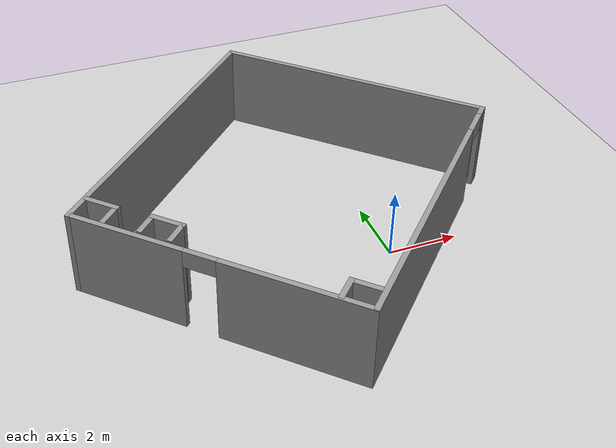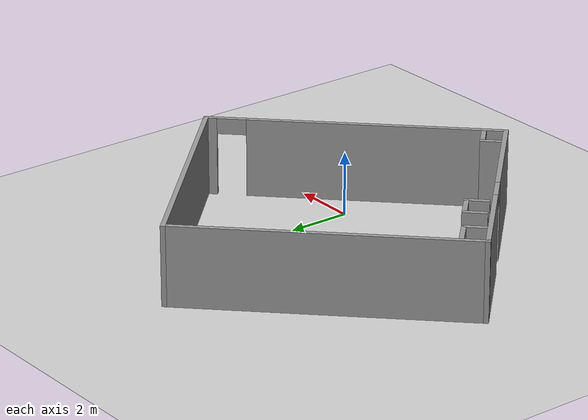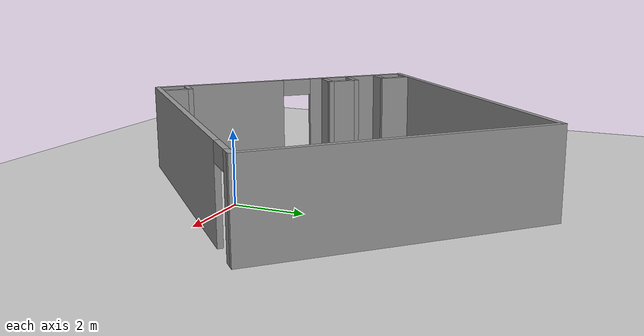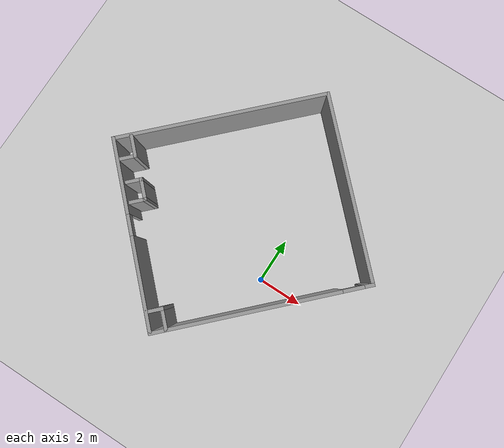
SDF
<sdf version="1.7">
 <world name="default">
  <light name="sun" type="directional">
   <pose>0 0 10 0 -0 0</pose>
   <diffuse>0.8 0.8 0.8 1</diffuse>
   <specular>0.2 0.2 0.2 1</specular>
   <attenuation>
    <range>1000</range>
    <constant>0.9</constant>
    <linear>0.01</linear>
    <quadratic>0.001</quadratic>
   </attenuation>
   <direction>-0.5 0.1 -0.9</direction>
   <spot><inner_angle>0</inner_angle><outer_angle>0</outer_angle><falloff>0</falloff></spot>
  </light>
  <model name="ground_plane">
   <static>1</static>
   <link name="link">
    <collision name="collision">
     <geometry><plane><normal>0 0 1</normal><size>100 100</size></plane></geometry>
     <surface>
      <contact><collide_bitmask>65535</collide_bitmask></contact>
      <friction><ode><mu>100</mu><mu2>50</mu2></ode></friction>
     </surface>
    </collision>
    <visual name="visual">
     <cast_shadows>0</cast_shadows>
     <geometry><plane><normal>0 0 1</normal><size>100 100</size></plane></geometry>
     <material>
      <script><uri>file://media/materials/scripts/gazebo.material</uri><name>Gazebo/Grey</name></script>
     </material>
    </visual>
   </link>
  </model>
  <gravity>0 0 -9.8</gravity>
  <magnetic_field>6e-06 2.3e-05 -4.2e-05</magnetic_field>
  <atmosphere type="adiabatic"/>
  <physics type="ode">
   <max_step_size>0.001</max_step_size>
   <real_time_factor>1</real_time_factor>
   <real_time_update_rate>1000</real_time_update_rate>
  </physics>
  <scene><ambient>0.4 0.4 0.4 1</ambient><background>0.7 0.7 0.7 1</background><shadows>1</shadows></scene>
  <spherical_coordinates>
   <surface_model>EARTH_WGS84</surface_model>
   <latitude_deg>0</latitude_deg>
   <longitude_deg>0</longitude_deg>
   <elevation>0</elevation>
   <heading_deg>0</heading_deg>
  </spherical_coordinates>
  <model name="lab">
   <pose>-2.19665 1.931 0 0 -0 0</pose>
   <link name="Wall_14">
    <collision name="Wall_14_Collision">
     <geometry><box><size>9.25 0.15 2.5</size></box></geometry>
     <pose>0 0 1.25 0 -0 0</pose>
    </collision>
    <visual name="Wall_14_Visual">
     <pose>0 0 1.25 0 -0 0</pose>
     <geometry><box><size>9.25 0.15 2.5</size></box></geometry>
     <material>
      <script><uri>file://media/materials/scripts/gazebo.material</uri><name>Gazebo/Grey</name></script>
      <ambient>1 1 1 1</ambient>
     </material>
     <meta><layer>0</layer></meta>
    </visual>
    <pose>-2.86378 2.86378 0 0 -0 0.785398</pose>
   </link>
   <link name="Wall_15">
    <collision name="Wall_15_Collision">
     <geometry><box><size>8.25 0.15 2.5</size></box></geometry>
     <pose>0 0 1.25 0 -0 0</pose>
    </collision>
    <visual name="Wall_15_Visual">
     <pose>0 0 1.25 0 -0 0</pose>
     <geometry><box><size>8.25 0.15 2.5</size></box></geometry>
     <material>
      <script><uri>file://media/materials/scripts/gazebo.material</uri><name>Gazebo/Grey</name></script>
      <ambient>1 1 1 1</ambient>
     </material>
     <meta><layer>0</layer></meta>
    </visual>
    <pose>3.21734 3.21734 0 0 -0 -0.785398</pose>
   </link>
   <link name="Wall_16">
    <pose>2.86378 -2.86378 0 0 -0 -2.35619</pose>
    <visual name="Wall_16_Visual_0">
     <pose>-4.41665 0 1.25 0 -0 0</pose>
     <geometry><box><size>0.416703 0.15 2.5</size></box></geometry>
     <material>
      <script><uri>file://media/materials/scripts/gazebo.material</uri><name>Gazebo/Grey</name></script>
      <ambient>1 1 1 1</ambient>
     </material>
     <meta><layer>0</layer></meta>
    </visual>
    <collision name="Wall_16_Collision_0">
     <geometry><box><size>0.416703 0.15 2.5</size></box></geometry>
     <pose>-4.41665 0 1.25 0 -0 0</pose>
    </collision>
    <visual name="Wall_16_Visual_1">
     <pose>0.658351 0 1.25 0 -0 0</pose>
     <geometry><box><size>7.9333 0.15 2.5</size></box></geometry>
     <material>
      <script><uri>file://media/materials/scripts/gazebo.material</uri><name>Gazebo/Grey</name></script>
      <ambient>1 1 1 1</ambient>
     </material>
     <meta><layer>0</layer></meta>
    </visual>
    <collision name="Wall_16_Collision_1">
     <geometry><box><size>7.9333 0.15 2.5</size></box></geometry>
     <pose>0.658351 0 1.25 0 -0 0</pose>
    </collision>
    <visual name="Wall_16_Visual_2">
     <pose>-3.7583 0 2.25 0 -0 0</pose>
     <geometry><box><size>0.9 0.15 0.5</size></box></geometry>
     <material>
      <script><uri>file://media/materials/scripts/gazebo.material</uri><name>Gazebo/Grey</name></script>
      <ambient>1 1 1 1</ambient>
     </material>
     <meta><layer>0</layer></meta>
    </visual>
    <collision name="Wall_16_Collision_2">
     <geometry><box><size>0.9 0.15 0.5</size></box></geometry>
     <pose>-3.7583 0 2.25 0 -0 0</pose>
    </collision>
   </link>
   <link name="Wall_17">
    <pose>-3.21734 -3.21734 0 0 -0 2.35619</pose>
    <visual name="Wall_17_Visual_0">
     <pose>-2.10326 0 1.25 0 -0 0</pose>
     <geometry><box><size>4.04348 0.15 2.5</size></box></geometry>
     <material>
      <script><uri>file://media/materials/scripts/gazebo.material</uri><name>Gazebo/Grey</name></script>
      <ambient>1 1 1 1</ambient>
     </material>
     <meta><layer>0</layer></meta>
    </visual>
    <collision name="Wall_17_Collision_0">
     <geometry><box><size>4.04348 0.15 2.5</size></box></geometry>
     <pose>-2.10326 0 1.25 0 -0 0</pose>
    </collision>
    <visual name="Wall_17_Visual_1">
     <pose>2.47174 0 1.25 0 -0 0</pose>
     <geometry><box><size>3.30652 0.15 2.5</size></box></geometry>
     <material>
      <script><uri>file://media/materials/scripts/gazebo.material</uri><name>Gazebo/Grey</name></script>
      <ambient>1 1 1 1</ambient>
     </material>
     <meta><layer>0</layer></meta>
    </visual>
    <collision name="Wall_17_Collision_1">
     <geometry><box><size>3.30652 0.15 2.5</size></box></geometry>
     <pose>2.47174 0 1.25 0 -0 0</pose>
    </collision>
    <visual name="Wall_17_Visual_2">
     <pose>0.368479 0 2.25 0 -0 0</pose>
     <geometry><box><size>0.9 0.15 0.5</size></box></geometry>
     <material>
      <script><uri>file://media/materials/scripts/gazebo.material</uri><name>Gazebo/Grey</name></script>
      <ambient>1 1 1 1</ambient>
     </material>
     <meta><layer>0</layer></meta>
    </visual>
    <collision name="Wall_17_Collision_2">
     <geometry><box><size>0.9 0.15 0.5</size></box></geometry>
     <pose>0.368479 0 2.25 0 -0 0</pose>
    </collision>
   </link>
   <link name="Wall_19">
    <collision name="Wall_19_Collision">
     <geometry><box><size>1 0.15 2.5</size></box></geometry>
     <pose>0 0 1.25 0 -0 0</pose>
    </collision>
    <visual name="Wall_19_Visual">
     <pose>0 0 1.25 0 -0 0</pose>
     <geometry><box><size>1 0.15 2.5</size></box></geometry>
     <material>
      <script><uri>file://media/materials/scripts/gazebo.material</uri><name>Gazebo/Grey</name></script>
      <ambient>1 1 1 1</ambient>
     </material>
     <meta><layer>0</layer></meta>
    </visual>
    <pose>-5.20423 -0.176501 0 0 -0 -0.785398</pose>
   </link>
   <link name="Wall_23">
    <collision name="Wall_23_Collision">
     <geometry><box><size>1 0.15 2.5</size></box></geometry>
     <pose>0 0 1.25 0 -0 0</pose>
    </collision>
    <visual name="Wall_23_Visual">
     <pose>0 0 1.25 0 -0 0</pose>
     <geometry><box><size>1 0.15 2.5</size></box></geometry>
     <material>
      <script><uri>file://media/materials/scripts/gazebo.material</uri><name>Gazebo/Grey</name></script>
      <ambient>1 1 1 1</ambient>
     </material>
     <meta><layer>0</layer></meta>
    </visual>
    <pose>-3.84792 -1.45084 0 0 -0 -0.785398</pose>
   </link>
   <link name="Wall_35">
    <collision name="Wall_35_Collision">
     <geometry><box><size>0.75 0.15 2.5</size></box></geometry>
     <pose>0 0 1.25 0 -0 0</pose>
    </collision>
    <visual name="Wall_35_Visual">
     <pose>0 0 1.25 0 -0 0</pose>
     <geometry><box><size>0.75 0.15 2.5</size></box></geometry>
     <material>
      <script><uri>file://media/materials/scripts/gazebo.material</uri><name>Gazebo/Grey</name></script>
      <ambient>1 1 1 1</ambient>
     </material>
     <meta><layer>0</layer></meta>
    </visual>
    <pose>-0.70969 -5.22731 0 0 -0 0.785398</pose>
   </link>
   <link name="Wall_36">
    <collision name="Wall_36_Collision">
     <geometry><box><size>1 0.15 2.5</size></box></geometry>
     <pose>0 0 1.25 0 -0 0</pose>
    </collision>
    <visual name="Wall_36_Visual">
     <pose>0 0 1.25 0 -0 0</pose>
     <geometry><box><size>1 0.15 2.5</size></box></geometry>
     <material>
      <script><uri>file://media/materials/scripts/gazebo.material</uri><name>Gazebo/Grey</name></script>
      <ambient>1 1 1 1</ambient>
     </material>
     <meta><layer>0</layer></meta>
    </visual>
    <pose>-0.197038 -5.3157 0 0 -0 -0.785398</pose>
   </link>
   <link name="Wall_38">
    <collision name="Wall_38_Collision">
     <geometry><box><size>0.75 0.15 2.5</size></box></geometry>
     <pose>0 0 1.25 0 -0 0</pose>
    </collision>
    <visual name="Wall_38_Visual">
     <pose>0 0 1.25 0 -0 0</pose>
     <geometry><box><size>0.75 0.15 2.5</size></box></geometry>
     <material>
      <script><uri>file://media/materials/scripts/gazebo.material</uri><name>Gazebo/Grey</name></script>
      <ambient>1 1 1 1</ambient>
     </material>
     <meta><layer>0</layer></meta>
    </visual>
    <pose>-5.11585 -0.689153 0 0 -0 -2.35619</pose>
   </link>
   <link name="Wall_42">
    <collision name="Wall_42_Collision">
     <geometry><box><size>0.75 0.15 2.5</size></box></geometry>
     <pose>0 0 1.25 0 -0 0</pose>
    </collision>
    <visual name="Wall_42_Visual">
     <pose>0 0 1.25 0 -0 0</pose>
     <geometry><box><size>0.75 0.15 2.5</size></box></geometry>
     <material>
      <script><uri>file://media/materials/scripts/gazebo.material</uri><name>Gazebo/Grey</name></script>
      <ambient>1 1 1 1</ambient>
     </material>
     <meta><layer>0</layer></meta>
    </visual>
    <pose>-4.36057 -1.36245 0 0 -0 -2.35619</pose>
   </link>
   <link name="Wall_44">
    <collision name="Wall_44_Collision">
     <geometry><box><size>0.75 0.15 2.5</size></box></geometry>
     <pose>0 0 1.25 0 -0 0</pose>
    </collision>
    <visual name="Wall_44_Visual">
     <pose>0 0 1.25 0 -0 0</pose>
     <geometry><box><size>0.75 0.15 2.5</size></box></geometry>
     <material>
      <script><uri>file://media/materials/scripts/gazebo.material</uri><name>Gazebo/Grey</name></script>
      <ambient>1 1 1 1</ambient>
     </material>
     <meta><layer>0</layer></meta>
    </visual>
    <pose>-3.75953 -1.96349 0 0 -0 -2.35619</pose>
   </link>
   <static>1</static>
  </model>
 </world>
</sdf>
